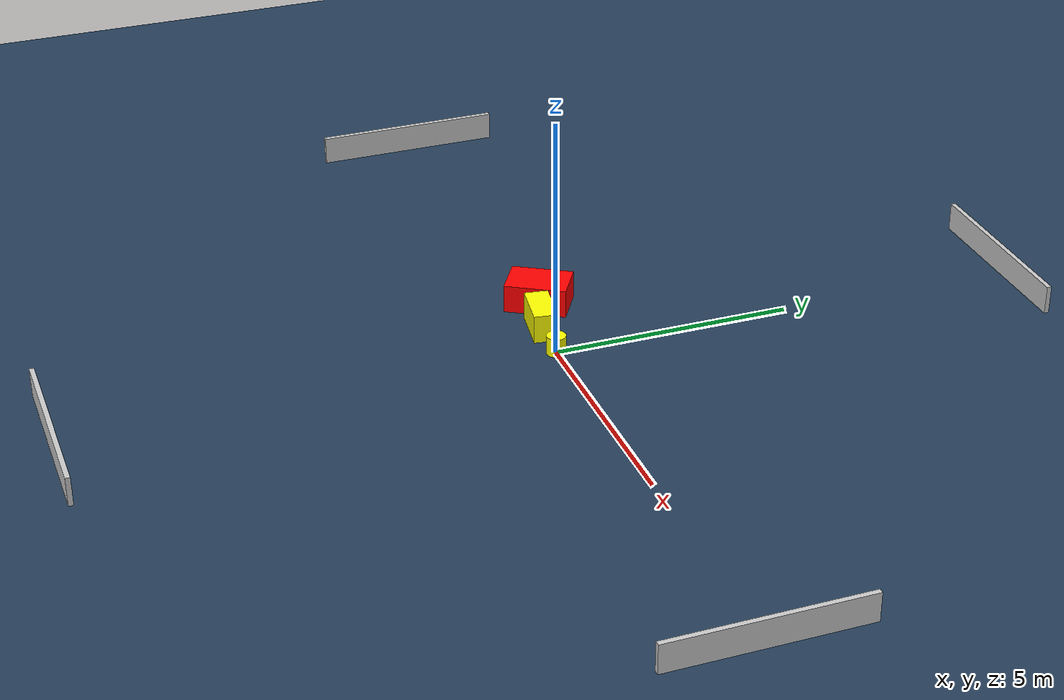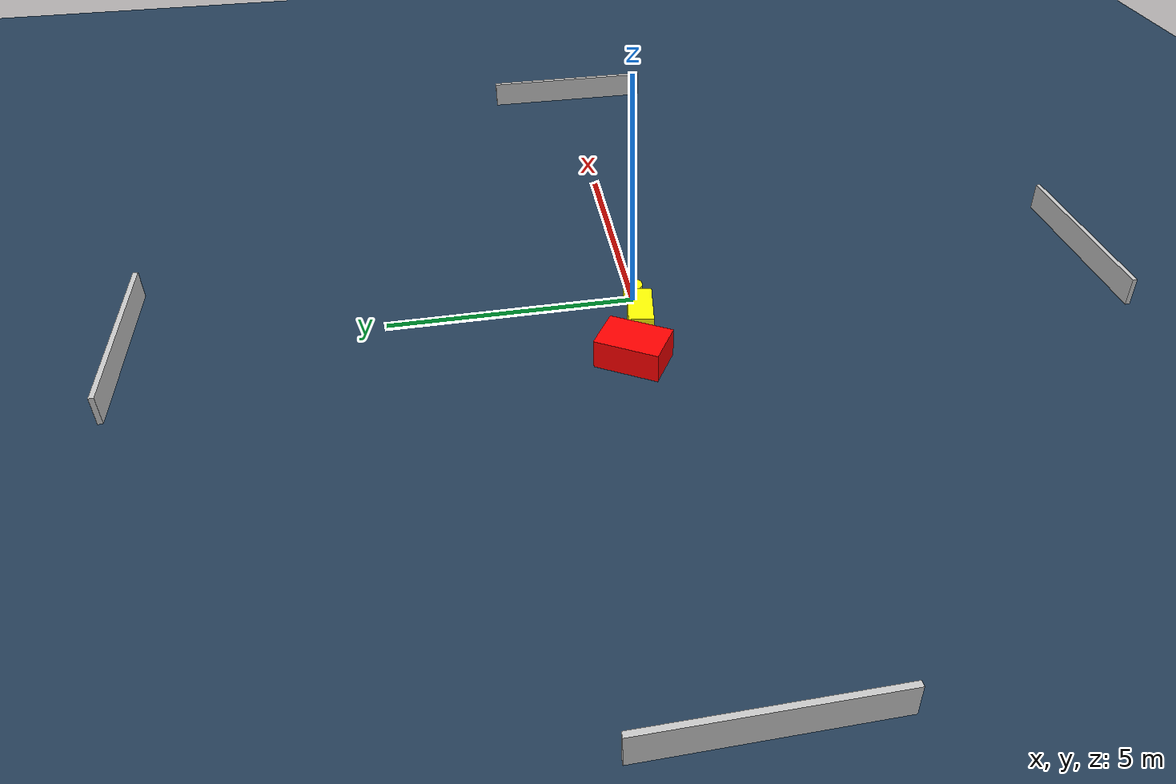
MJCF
<?xml version="1.0" ?>
<mujoco model="generated_environment">
  <option timestep="0.01" integrator="RK4" cone="elliptic"/>
  <default>
    <geom density="1"/>
  </default>
  <asset>
    <texture builtin="gradient" height="3072" name="skybox" rgb1="0.3 0.5 0.7" rgb2="0 0 0" type="skybox" width="512"/>
    <texture builtin="checker" height="300" name="groundplane" rgb1="0.2 0.3 0.4" rgb2="0.1 0.2 0.3" type="2d" width="300"/>
    <material name="groundplane" reflectance="0.2" texrepeat="5 5" texture="groundplane"/>
  </asset>
  <worldbody>
    <light dir="0 0 -1" directional="true" pos="0 0 1.5"/>
    <geom condim="3" friction="0.5 0.005 0.001" material="groundplane" name="floor" pos="0 0 0" size="0 0 0.05" type="plane"/>
    <body name="walls">
      <geom name="wall_1" condim="4" pos="-10.0 0.0 0.3" rgba="0.800000011920929 0.800000011920929 0.800000011920929 1.0" size="0.05 2.0 0.3" type="box"/>
      <geom name="wall_2" condim="4" pos="10.0 0.0 0.3" rgba="0.800000011920929 0.800000011920929 0.800000011920929 1.0" size="0.05 2.0 0.3" type="box"/>
      <geom name="wall_3" condim="4" pos="0.0 -10.0 0.3" rgba="0.800000011920929 0.800000011920929 0.800000011920929 1.0" size="2.0 0.05 0.3" type="box"/>
      <geom name="wall_4" condim="4" pos="0.0 10.0 0.3" rgba="0.800000011920929 0.800000011920929 0.800000011920929 1.0" size="2.0 0.05 0.3" type="box"/>
    </body>
    <body name="robot">
      <joint name="joint_x" type="slide" pos="0 0 0" axis="1 0 0"/>
      <joint name="joint_y" type="slide" pos="0 0 0" axis="0 1 0"/>
      <geom name="robot" type="cylinder" pos="0.0 0.0 0.2" size="0.2 0.2 0.0" mass="5.0" friction="1.0 0.005 0.0001" condim="4" rgba="1.0 1.0 0.0 1.0"/>
    </body>
    <body name="obstacle_1_movable">
      <geom name="obstacle_1_movable" condim="4" pos="-0.9713941323968919 0.0310562374661208 0.3" euler="0 0 261.6663270174258" friction="0.0 0.005 0.001" rgba="1.0 1.0 0.0 1.0" size="0.24809772673797537 0.5100661851819066 0.3" type="box" mass="0.1"/>
      <joint type="free"/>
    </body>
    <body name="obstacle_2_static">
      <geom name="obstacle_2_static" condim="4" pos="-1.9620945421161093 0.34567932923734535 0.3" euler="0 0 148.96314613819612" friction="0.0 0.005 0.001" rgba="1.0 0.0 0.0 1.0" size="0.4386172174168428 0.6455642162770371 0.3" type="box"/>
    </body>
  </worldbody>
  <actuator>
    <motor name="actuator_x" joint="joint_x" gear="1" ctrlrange="-1 1"/>
    <motor name="actuator_y" joint="joint_y" gear="1" ctrlrange="-1 1"/>
  </actuator>
</mujoco>
